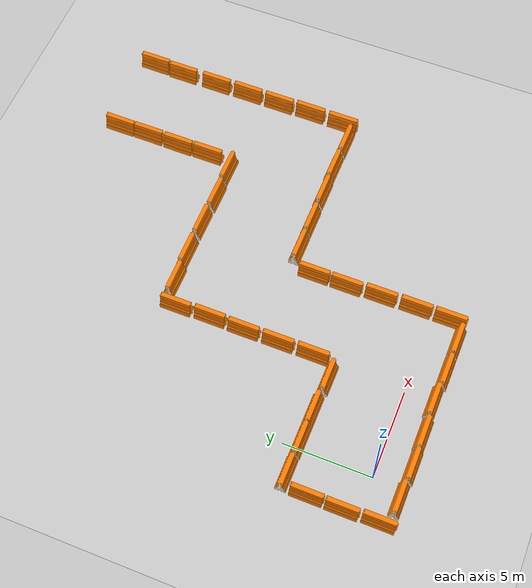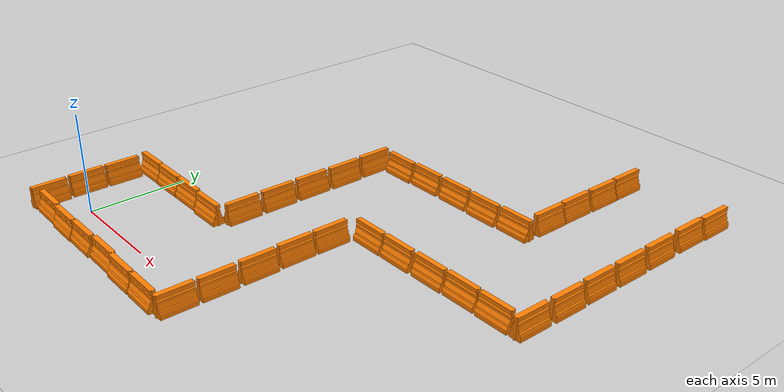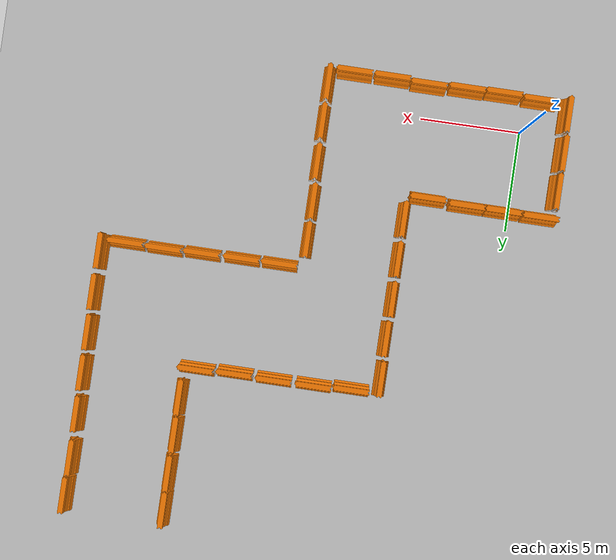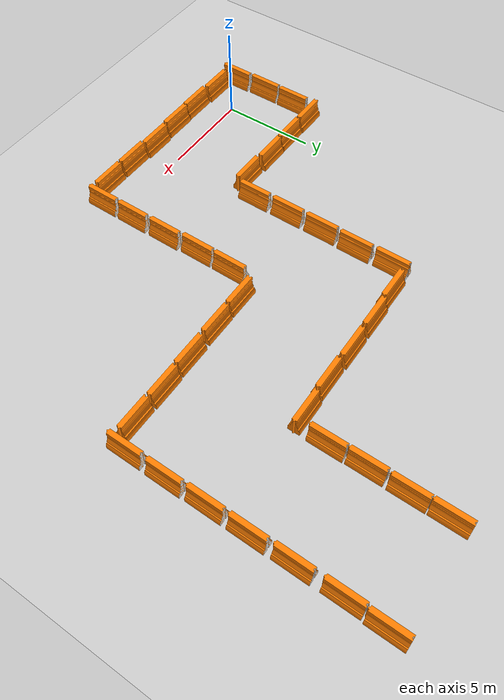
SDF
<sdf version="1.7">
 <world name="default">
  <light name="sun" type="directional">
   <pose>0 0 10 0 -0 0</pose>
   <diffuse>0.8 0.8 0.8 1</diffuse>
   <specular>0.2 0.2 0.2 1</specular>
   <attenuation>
    <range>1000</range>
    <constant>0.9</constant>
    <linear>0.01</linear>
    <quadratic>0.001</quadratic>
   </attenuation>
   <direction>-0.5 0.1 -0.9</direction>
   <spot><inner_angle>0</inner_angle><outer_angle>0</outer_angle><falloff>0</falloff></spot>
  </light>
  <model name="ground_plane">
   <static>1</static>
   <link name="link">
    <collision name="collision">
     <geometry><plane><normal>0 0 1</normal><size>100 100</size></plane></geometry>
     <surface><friction><ode><mu>100</mu><mu2>50</mu2></ode></friction></surface>
    </collision>
    <visual name="visual">
     <cast_shadows>0</cast_shadows>
     <geometry><plane><normal>0 0 1</normal><size>100 100</size></plane></geometry>
     <material>
      <script><uri>file://media/materials/scripts/gazebo.material</uri><name>Gazebo/Grey</name></script>
     </material>
    </visual>
    <velocity_decay><linear>0</linear><angular>0</angular></velocity_decay>
   </link>
  </model>
  <physics type="ode">
   <max_step_size>0.001</max_step_size>
   <real_time_factor>1</real_time_factor>
   <real_time_update_rate>1000</real_time_update_rate>
  </physics>
  <scene><ambient>0.4 0.4 0.4 1</ambient><background>0.7 0.7 0.7 1</background><shadows>1</shadows></scene>
  <spherical_coordinates>
   <surface_model>EARTH_WGS84</surface_model>
   <latitude_deg>0</latitude_deg>
   <longitude_deg>0</longitude_deg>
   <elevation>0</elevation>
   <heading_deg>0</heading_deg>
  </spherical_coordinates>
  <gravity>0 0 -9.8</gravity>
  <magnetic_field>6e-06 2.3e-05 -4.2e-05</magnetic_field>
  <atmosphere type="adiabatic"/>
  <model name="drc_practice_organge_jersey_barrier_0_clone_2_clone_clone_clone_1_clone_clone_1_clone_clone_28_clone_0_clone_clone_clone">
   <static>1</static>
   <link name="link">
    <visual name="visual">
     <geometry>
      <mesh><uri>model://drc_practice_orange_jersey_barrier/meshes/jersey_barrier.dae</uri></mesh>
     </geometry>
    </visual>
    <collision name="collision">
     <geometry>
      <mesh><uri>model://drc_practice_orange_jersey_barrier/meshes/jersey_barrier.dae</uri></mesh>
     </geometry>
    </collision>
   </link>
   <pose>2.18714 4.11153 0 0 -0 1.57</pose>
  </model>
  <model name="drc_practice_organge_jersey_barrier_0_clone_2_clone_clone_clone_1_clone_clone_1_clone_clone_28_clone_0_clone_clone_9_clone_clone_clone_clone_clone_clone">
   <static>1</static>
   <link name="link">
    <visual name="visual">
     <geometry>
      <mesh><uri>model://drc_practice_orange_jersey_barrier/meshes/jersey_barrier.dae</uri></mesh>
     </geometry>
    </visual>
    <collision name="collision">
     <geometry>
      <mesh><uri>model://drc_practice_orange_jersey_barrier/meshes/jersey_barrier.dae</uri></mesh>
     </geometry>
    </collision>
   </link>
   <pose>5.20004 5.23177 0 0 -0 0</pose>
  </model>
  <model name="drc_practice_organge_jersey_barrier_0_clone_2_clone_clone_clone_1_clone_clone_1_clone_clone_28_clone_0_clone_clone_9_clone_clone_clone_clone_clone_clone_0">
   <static>1</static>
   <link name="link">
    <visual name="visual">
     <geometry>
      <mesh><uri>model://drc_practice_orange_jersey_barrier/meshes/jersey_barrier.dae</uri></mesh>
     </geometry>
    </visual>
    <collision name="collision">
     <geometry>
      <mesh><uri>model://drc_practice_orange_jersey_barrier/meshes/jersey_barrier.dae</uri></mesh>
     </geometry>
    </collision>
   </link>
   <pose>5.19338 7.23505 0 0 -0 0</pose>
  </model>
  <model name="drc_practice_organge_jersey_barrier_0_clone_2_clone_clone_clone_1_clone_clone_1_clone_clone_28_clone_0_clone_clone_9_clone_clone_clone_clone_clone_clone_1">
   <static>1</static>
   <link name="link">
    <visual name="visual">
     <geometry>
      <mesh><uri>model://drc_practice_orange_jersey_barrier/meshes/jersey_barrier.dae</uri></mesh>
     </geometry>
    </visual>
    <collision name="collision">
     <geometry>
      <mesh><uri>model://drc_practice_orange_jersey_barrier/meshes/jersey_barrier.dae</uri></mesh>
     </geometry>
    </collision>
   </link>
   <pose>9.86001 0.991102 0 0 -0 0</pose>
  </model>
  <model name="drc_practice_organge_jersey_barrier_0_clone_2_clone_clone_clone_1_clone_clone_1_clone_clone_28_clone_0_clone_clone_9_clone_clone_clone_clone_clone_clone_2">
   <static>1</static>
   <link name="link">
    <visual name="visual">
     <geometry>
      <mesh><uri>model://drc_practice_orange_jersey_barrier/meshes/jersey_barrier.dae</uri></mesh>
     </geometry>
    </visual>
    <collision name="collision">
     <geometry>
      <mesh><uri>model://drc_practice_orange_jersey_barrier/meshes/jersey_barrier.dae</uri></mesh>
     </geometry>
    </collision>
   </link>
   <pose>9.83389 3.00349 0 0 -0 0</pose>
  </model>
  <model name="drc_practice_organge_jersey_barrier_0_clone_2_clone_clone_clone_1_clone_clone_1_clone_clone_28_clone_0_clone_clone_9_clone_clone_clone_clone_clone_clone_3">
   <static>1</static>
   <link name="link">
    <visual name="visual">
     <geometry>
      <mesh><uri>model://drc_practice_orange_jersey_barrier/meshes/jersey_barrier.dae</uri></mesh>
     </geometry>
    </visual>
    <collision name="collision">
     <geometry>
      <mesh><uri>model://drc_practice_orange_jersey_barrier/meshes/jersey_barrier.dae</uri></mesh>
     </geometry>
    </collision>
   </link>
   <pose>9.7693 4.98531 0 0 -0 0</pose>
  </model>
  <model name="drc_practice_organge_jersey_barrier_0_clone_2_clone_clone_clone_1_clone_clone_1_clone_clone_28_clone_0_clone_clone_9_clone_clone_clone_clone_clone_clone_4">
   <static>1</static>
   <link name="link">
    <visual name="visual">
     <geometry>
      <mesh><uri>model://drc_practice_orange_jersey_barrier/meshes/jersey_barrier.dae</uri></mesh>
     </geometry>
    </visual>
    <collision name="collision">
     <geometry>
      <mesh><uri>model://drc_practice_orange_jersey_barrier/meshes/jersey_barrier.dae</uri></mesh>
     </geometry>
    </collision>
   </link>
   <pose>9.77617 6.89145 0 0 -0 0</pose>
  </model>
  <model name="drc_practice_organge_jersey_barrier_0_clone_2_clone_clone_clone_1_clone_clone_1_clone_clone_28_clone_0_clone_clone_9_clone_clone_clone_clone_clone_clone_5">
   <static>1</static>
   <link name="link">
    <visual name="visual">
     <geometry>
      <mesh><uri>model://drc_practice_orange_jersey_barrier/meshes/jersey_barrier.dae</uri></mesh>
     </geometry>
    </visual>
    <collision name="collision">
     <geometry>
      <mesh><uri>model://drc_practice_orange_jersey_barrier/meshes/jersey_barrier.dae</uri></mesh>
     </geometry>
    </collision>
   </link>
   <pose>5.18951 9.2327 0 0 -0 0</pose>
  </model>
  <model name="drc_practice_organge_jersey_barrier_0_clone_2_clone_clone_clone_1_clone_clone_1_clone_clone_28_clone_0_clone_clone_9_clone_clone_clone_clone_clone_clone_6">
   <static>1</static>
   <link name="link">
    <visual name="visual">
     <geometry>
      <mesh><uri>model://drc_practice_orange_jersey_barrier/meshes/jersey_barrier.dae</uri></mesh>
     </geometry>
    </visual>
    <collision name="collision">
     <geometry>
      <mesh><uri>model://drc_practice_orange_jersey_barrier/meshes/jersey_barrier.dae</uri></mesh>
     </geometry>
    </collision>
   </link>
   <pose>5.22797 11.2137 0 0 -0 0</pose>
  </model>
  <model name="drc_practice_organge_jersey_barrier_0_clone_2_clone_clone_clone_1_clone_clone_1_clone_clone_28_clone_0_clone_clone_9_clone_clone_clone_clone_clone_clone_7">
   <static>1</static>
   <link name="link">
    <visual name="visual">
     <geometry>
      <mesh><uri>model://drc_practice_orange_jersey_barrier/meshes/jersey_barrier.dae</uri></mesh>
     </geometry>
    </visual>
    <collision name="collision">
     <geometry>
      <mesh><uri>model://drc_practice_orange_jersey_barrier/meshes/jersey_barrier.dae</uri></mesh>
     </geometry>
    </collision>
   </link>
   <pose>5.18786 13.2115 0 0 -0 0</pose>
  </model>
  <model name="drc_practice_organge_jersey_barrier_0_clone_2_clone_clone_clone_1_clone_clone_1_clone_clone_28_clone_0_clone_clone_clone_0">
   <static>1</static>
   <link name="link">
    <visual name="visual">
     <geometry>
      <mesh><uri>model://drc_practice_orange_jersey_barrier/meshes/jersey_barrier.dae</uri></mesh>
     </geometry>
    </visual>
    <collision name="collision">
     <geometry>
      <mesh><uri>model://drc_practice_orange_jersey_barrier/meshes/jersey_barrier.dae</uri></mesh>
     </geometry>
    </collision>
   </link>
   <pose>6.56564 13.924 0 0 -0 1.57</pose>
  </model>
  <model name="drc_practice_organge_jersey_barrier_0_clone_2_clone_clone_clone_1_clone_clone_1_clone_clone_28_clone_0_clone_clone_clone_1">
   <static>1</static>
   <link name="link">
    <visual name="visual">
     <geometry>
      <mesh><uri>model://drc_practice_orange_jersey_barrier/meshes/jersey_barrier.dae</uri></mesh>
     </geometry>
    </visual>
    <collision name="collision">
     <geometry>
      <mesh><uri>model://drc_practice_orange_jersey_barrier/meshes/jersey_barrier.dae</uri></mesh>
     </geometry>
    </collision>
   </link>
   <pose>8.44317 14 0 0 -0 1.57</pose>
  </model>
  <model name="drc_practice_organge_jersey_barrier_0_clone_2_clone_clone_clone_1_clone_clone_1_clone_clone_28_clone_0_clone_clone_clone_2">
   <static>1</static>
   <link name="link">
    <visual name="visual">
     <geometry>
      <mesh><uri>model://drc_practice_orange_jersey_barrier/meshes/jersey_barrier.dae</uri></mesh>
     </geometry>
    </visual>
    <collision name="collision">
     <geometry>
      <mesh><uri>model://drc_practice_orange_jersey_barrier/meshes/jersey_barrier.dae</uri></mesh>
     </geometry>
    </collision>
   </link>
   <pose>10.4361 14.0014 0 0 -0 1.57</pose>
  </model>
  <model name="drc_practice_organge_jersey_barrier_0_clone_2_clone_clone_clone_1_clone_clone_1_clone_clone_28_clone_0_clone_clone_clone_3">
   <static>1</static>
   <link name="link">
    <visual name="visual">
     <geometry>
      <mesh><uri>model://drc_practice_orange_jersey_barrier/meshes/jersey_barrier.dae</uri></mesh>
     </geometry>
    </visual>
    <collision name="collision">
     <geometry>
      <mesh><uri>model://drc_practice_orange_jersey_barrier/meshes/jersey_barrier.dae</uri></mesh>
     </geometry>
    </collision>
   </link>
   <pose>10.957 8.25445 0 0 -0 1.57</pose>
  </model>
  <model name="drc_practice_organge_jersey_barrier_0_clone_2_clone_clone_clone_1_clone_clone_1_clone_clone_28_clone_0_clone_clone_clone_4">
   <static>1</static>
   <link name="link">
    <visual name="visual">
     <geometry>
      <mesh><uri>model://drc_practice_orange_jersey_barrier/meshes/jersey_barrier.dae</uri></mesh>
     </geometry>
    </visual>
    <collision name="collision">
     <geometry>
      <mesh><uri>model://drc_practice_orange_jersey_barrier/meshes/jersey_barrier.dae</uri></mesh>
     </geometry>
    </collision>
   </link>
   <pose>12.8521 8.26148 0 0 -0 1.57</pose>
  </model>
  <model name="drc_practice_organge_jersey_barrier_0_clone_2_clone_clone_clone_1_clone_clone_1_clone_clone_28_clone_0_clone_clone_clone_5">
   <static>1</static>
   <link name="link">
    <visual name="visual">
     <geometry>
      <mesh><uri>model://drc_practice_orange_jersey_barrier/meshes/jersey_barrier.dae</uri></mesh>
     </geometry>
    </visual>
    <collision name="collision">
     <geometry>
      <mesh><uri>model://drc_practice_orange_jersey_barrier/meshes/jersey_barrier.dae</uri></mesh>
     </geometry>
    </collision>
   </link>
   <pose>14.8374 8.28236 0 0 -0 1.57</pose>
  </model>
  <model name="drc_practice_organge_jersey_barrier_0_clone_2_clone_clone_clone_1_clone_clone_1_clone_clone_28_clone_0_clone_clone_clone_6">
   <static>1</static>
   <link name="link">
    <visual name="visual">
     <geometry>
      <mesh><uri>model://drc_practice_orange_jersey_barrier/meshes/jersey_barrier.dae</uri></mesh>
     </geometry>
    </visual>
    <collision name="collision">
     <geometry>
      <mesh><uri>model://drc_practice_orange_jersey_barrier/meshes/jersey_barrier.dae</uri></mesh>
     </geometry>
    </collision>
   </link>
   <pose>16.7324 8.31395 0 0 -0 1.57</pose>
  </model>
  <model name="drc_practice_organge_jersey_barrier_0_clone_2_clone_clone_clone_1_clone_clone_1_clone_clone_28_clone_0_clone_clone_clone_7">
   <static>1</static>
   <link name="link">
    <visual name="visual">
     <geometry>
      <mesh><uri>model://drc_practice_orange_jersey_barrier/meshes/jersey_barrier.dae</uri></mesh>
     </geometry>
    </visual>
    <collision name="collision">
     <geometry>
      <mesh><uri>model://drc_practice_orange_jersey_barrier/meshes/jersey_barrier.dae</uri></mesh>
     </geometry>
    </collision>
   </link>
   <pose>12.3931 13.9558 0 0 -0 1.57</pose>
  </model>
  <model name="drc_practice_organge_jersey_barrier_0_clone_2_clone_clone_clone_1_clone_clone_1_clone_clone_28_clone_0_clone_clone_clone_8_clone">
   <static>1</static>
   <link name="link">
    <visual name="visual">
     <geometry>
      <mesh><uri>model://drc_practice_orange_jersey_barrier/meshes/jersey_barrier.dae</uri></mesh>
     </geometry>
    </visual>
    <collision name="collision">
     <geometry>
      <mesh><uri>model://drc_practice_orange_jersey_barrier/meshes/jersey_barrier.dae</uri></mesh>
     </geometry>
    </collision>
   </link>
   <pose>14.3197 14.0099 0 0 -0 1.57</pose>
  </model>
  <model name="drc_practice_organge_jersey_barrier_0_clone_2_clone_clone_clone_1_clone_clone_1_clone_clone_28_clone_0_clone_clone_clone_8_clone_0">
   <static>1</static>
   <link name="link">
    <visual name="visual">
     <geometry>
      <mesh><uri>model://drc_practice_orange_jersey_barrier/meshes/jersey_barrier.dae</uri></mesh>
     </geometry>
    </visual>
    <collision name="collision">
     <geometry>
      <mesh><uri>model://drc_practice_orange_jersey_barrier/meshes/jersey_barrier.dae</uri></mesh>
     </geometry>
    </collision>
   </link>
   <pose>18.6291 8.28063 0 0 -0 1.57</pose>
  </model>
  <model name="drc_practice_organge_jersey_barrier_0_clone_2_clone_clone_clone_1_clone_clone_1_clone_clone_28_clone_0_clone_clone_9_clone_clone_clone_clone_clone">
   <static>1</static>
   <link name="link">
    <visual name="visual">
     <geometry>
      <mesh><uri>model://drc_practice_orange_jersey_barrier/meshes/jersey_barrier.dae</uri></mesh>
     </geometry>
    </visual>
    <collision name="collision">
     <geometry>
      <mesh><uri>model://drc_practice_orange_jersey_barrier/meshes/jersey_barrier.dae</uri></mesh>
     </geometry>
    </collision>
   </link>
   <pose>14.9549 15.518 0 0 -0 0</pose>
  </model>
  <model name="drc_practice_organge_jersey_barrier_0_clone_2_clone_clone_clone_1_clone_clone_1_clone_clone_28_clone_0_clone_clone_9_clone_clone_clone_clone_clone_0">
   <static>1</static>
   <link name="link">
    <visual name="visual">
     <geometry>
      <mesh><uri>model://drc_practice_orange_jersey_barrier/meshes/jersey_barrier.dae</uri></mesh>
     </geometry>
    </visual>
    <collision name="collision">
     <geometry>
      <mesh><uri>model://drc_practice_orange_jersey_barrier/meshes/jersey_barrier.dae</uri></mesh>
     </geometry>
    </collision>
   </link>
   <pose>14.938 17.3827 0 0 -0 0</pose>
  </model>
  <model name="drc_practice_organge_jersey_barrier_0_clone_2_clone_clone_clone_1_clone_clone_1_clone_clone_28_clone_0_clone_clone_9_clone_clone_clone_clone_clone_1">
   <static>1</static>
   <link name="link">
    <visual name="visual">
     <geometry>
      <mesh><uri>model://drc_practice_orange_jersey_barrier/meshes/jersey_barrier.dae</uri></mesh>
     </geometry>
    </visual>
    <collision name="collision">
     <geometry>
      <mesh><uri>model://drc_practice_orange_jersey_barrier/meshes/jersey_barrier.dae</uri></mesh>
     </geometry>
    </collision>
   </link>
   <pose>14.9637 19.3089 0 0 -0 0</pose>
  </model>
  <model name="drc_practice_organge_jersey_barrier_0_clone_2_clone_clone_clone_1_clone_clone_1_clone_clone_28_clone_0_clone_clone_9_clone_clone_clone_clone_clone_2">
   <static>1</static>
   <link name="link">
    <visual name="visual">
     <geometry>
      <mesh><uri>model://drc_practice_orange_jersey_barrier/meshes/jersey_barrier.dae</uri></mesh>
     </geometry>
    </visual>
    <collision name="collision">
     <geometry>
      <mesh><uri>model://drc_practice_orange_jersey_barrier/meshes/jersey_barrier.dae</uri></mesh>
     </geometry>
    </collision>
   </link>
   <pose>19.9043 8.90395 0 0 -0 0</pose>
  </model>
  <model name="drc_practice_organge_jersey_barrier_0_clone_2_clone_clone_clone_1_clone_clone_1_clone_clone_28_clone_0_clone_clone_9_clone_clone_clone_clone_clone_3">
   <static>1</static>
   <link name="link">
    <visual name="visual">
     <geometry>
      <mesh><uri>model://drc_practice_orange_jersey_barrier/meshes/jersey_barrier.dae</uri></mesh>
     </geometry>
    </visual>
    <collision name="collision">
     <geometry>
      <mesh><uri>model://drc_practice_orange_jersey_barrier/meshes/jersey_barrier.dae</uri></mesh>
     </geometry>
    </collision>
   </link>
   <pose>19.9298 10.962 0 0 -0 0</pose>
  </model>
  <model name="drc_practice_organge_jersey_barrier_0_clone_2_clone_clone_clone_1_clone_clone_1_clone_clone_28_clone_0_clone_clone_9_clone_clone_clone_clone_clone_4">
   <static>1</static>
   <link name="link">
    <visual name="visual">
     <geometry>
      <mesh><uri>model://drc_practice_orange_jersey_barrier/meshes/jersey_barrier.dae</uri></mesh>
     </geometry>
    </visual>
    <collision name="collision">
     <geometry>
      <mesh><uri>model://drc_practice_orange_jersey_barrier/meshes/jersey_barrier.dae</uri></mesh>
     </geometry>
    </collision>
   </link>
   <pose>19.8991 12.9644 0 0 -0 0</pose>
  </model>
  <model name="drc_practice_organge_jersey_barrier_0_clone_2_clone_clone_clone_1_clone_clone_1_clone_clone_28_clone_0_clone_clone_9_clone_clone_clone_clone_clone_5">
   <static>1</static>
   <link name="link">
    <visual name="visual">
     <geometry>
      <mesh><uri>model://drc_practice_orange_jersey_barrier/meshes/jersey_barrier.dae</uri></mesh>
     </geometry>
    </visual>
    <collision name="collision">
     <geometry>
      <mesh><uri>model://drc_practice_orange_jersey_barrier/meshes/jersey_barrier.dae</uri></mesh>
     </geometry>
    </collision>
   </link>
   <pose>19.9031 14.9872 0 0 -0 0</pose>
  </model>
  <model name="drc_practice_organge_jersey_barrier_0_clone_2_clone_clone_clone_1_clone_clone_1_clone_clone_28_clone_0_clone_clone_9_clone_clone_clone_clone_clone_6">
   <static>1</static>
   <link name="link">
    <visual name="visual">
     <geometry>
      <mesh><uri>model://drc_practice_orange_jersey_barrier/meshes/jersey_barrier.dae</uri></mesh>
     </geometry>
    </visual>
    <collision name="collision">
     <geometry>
      <mesh><uri>model://drc_practice_orange_jersey_barrier/meshes/jersey_barrier.dae</uri></mesh>
     </geometry>
    </collision>
   </link>
   <pose>19.8817 17.0383 0 0 -0 0</pose>
  </model>
  <model name="drc_practice_organge_jersey_barrier_0_clone_2_clone_clone_clone_1_clone_clone_1_clone_clone_28_clone_0_clone_clone_9_clone_clone_clone_clone_clone_7">
   <static>1</static>
   <link name="link">
    <visual name="visual">
     <geometry>
      <mesh><uri>model://drc_practice_orange_jersey_barrier/meshes/jersey_barrier.dae</uri></mesh>
     </geometry>
    </visual>
    <collision name="collision">
     <geometry>
      <mesh><uri>model://drc_practice_orange_jersey_barrier/meshes/jersey_barrier.dae</uri></mesh>
     </geometry>
    </collision>
   </link>
   <pose>19.8646 19.2238 0 0 -0 0</pose>
  </model>
  <model name="drc_practice_organge_jersey_barrier_0_clone_2_clone_clone_clone_1_clone_clone_1_clone_clone_28_clone_0_clone_clone_clone_clone">
   <static>1</static>
   <link name="link">
    <visual name="visual">
     <geometry>
      <mesh><uri>model://drc_practice_orange_jersey_barrier/meshes/jersey_barrier.dae</uri></mesh>
     </geometry>
    </visual>
    <collision name="collision">
     <geometry>
      <mesh><uri>model://drc_practice_orange_jersey_barrier/meshes/jersey_barrier.dae</uri></mesh>
     </geometry>
    </collision>
   </link>
   <pose>0.361116 4.12253 0 0 -0 1.57</pose>
  </model>
  <model name="drc_practice_organge_jersey_barrier_0_clone_2_clone_clone_clone_1_clone_clone_1_clone_clone_28_clone_0_clone_clone_clone_clone_clone">
   <static>1</static>
   <link name="link">
    <visual name="visual">
     <geometry>
      <mesh><uri>model://drc_practice_orange_jersey_barrier/meshes/jersey_barrier.dae</uri></mesh>
     </geometry>
    </visual>
    <collision name="collision">
     <geometry>
      <mesh><uri>model://drc_practice_orange_jersey_barrier/meshes/jersey_barrier.dae</uri></mesh>
     </geometry>
    </collision>
   </link>
   <pose>-1.49284 4.15805 0 0 -0 1.57</pose>
  </model>
  <model name="drc_practice_organge_jersey_barrier_0_clone_2_clone_clone_clone_1_clone_clone_1_clone_clone_28_clone_0_clone_clone_9_clone_clone_clone_clone_clone_clone_1_clone">
   <static>1</static>
   <link name="link">
    <visual name="visual">
     <geometry>
      <mesh><uri>model://drc_practice_orange_jersey_barrier/meshes/jersey_barrier.dae</uri></mesh>
     </geometry>
    </visual>
    <collision name="collision">
     <geometry>
      <mesh><uri>model://drc_practice_orange_jersey_barrier/meshes/jersey_barrier.dae</uri></mesh>
     </geometry>
    </collision>
   </link>
   <pose>-2.14495 2.8064 0 0 -0 0</pose>
  </model>
  <model name="drc_practice_organge_jersey_barrier_0_clone_2_clone_clone_clone_1_clone_clone_1_clone_clone_28_clone_0_clone_clone_9_clone_clone_clone_clone_clone_clone_1_clone_0">
   <static>1</static>
   <link name="link">
    <visual name="visual">
     <geometry>
      <mesh><uri>model://drc_practice_orange_jersey_barrier/meshes/jersey_barrier.dae</uri></mesh>
     </geometry>
    </visual>
    <collision name="collision">
     <geometry>
      <mesh><uri>model://drc_practice_orange_jersey_barrier/meshes/jersey_barrier.dae</uri></mesh>
     </geometry>
    </collision>
   </link>
   <pose>-2.16893 0.901849 0 0 -0 0</pose>
  </model>
  <model name="drc_practice_organge_jersey_barrier_0_clone_2_clone_clone_clone_1_clone_clone_1_clone_clone_28_clone_0_clone_clone_9_clone_clone_clone_clone_clone_clone_1_clone_1">
   <static>1</static>
   <link name="link">
    <visual name="visual">
     <geometry>
      <mesh><uri>model://drc_practice_orange_jersey_barrier/meshes/jersey_barrier.dae</uri></mesh>
     </geometry>
    </visual>
    <collision name="collision">
     <geometry>
      <mesh><uri>model://drc_practice_orange_jersey_barrier/meshes/jersey_barrier.dae</uri></mesh>
     </geometry>
    </collision>
   </link>
   <pose>-2.11996 -1.03828 0 0 -0 0</pose>
  </model>
  <model name="drc_practice_organge_jersey_barrier_0_clone_2_clone_clone_clone_1_clone_clone_1_clone_clone_28_clone_0_clone_clone_clone_clone_clone_0">
   <static>1</static>
   <link name="link">
    <visual name="visual">
     <geometry>
      <mesh><uri>model://drc_practice_orange_jersey_barrier/meshes/jersey_barrier.dae</uri></mesh>
     </geometry>
    </visual>
    <collision name="collision">
     <geometry>
      <mesh><uri>model://drc_practice_orange_jersey_barrier/meshes/jersey_barrier.dae</uri></mesh>
     </geometry>
    </collision>
   </link>
   <pose>-0.73055 -1.60357 0 0 -0 1.57</pose>
  </model>
  <model name="drc_practice_organge_jersey_barrier_0_clone_2_clone_clone_clone_1_clone_clone_1_clone_clone_28_clone_0_clone_clone_clone_clone_clone_1">
   <static>1</static>
   <link name="link">
    <visual name="visual">
     <geometry>
      <mesh><uri>model://drc_practice_orange_jersey_barrier/meshes/jersey_barrier.dae</uri></mesh>
     </geometry>
    </visual>
    <collision name="collision">
     <geometry>
      <mesh><uri>model://drc_practice_orange_jersey_barrier/meshes/jersey_barrier.dae</uri></mesh>
     </geometry>
    </collision>
   </link>
   <pose>1.15516 -1.68792 0 0 -0 1.57</pose>
  </model>
  <model name="drc_practice_organge_jersey_barrier_0_clone_2_clone_clone_clone_1_clone_clone_1_clone_clone_28_clone_0_clone_clone_clone_clone_clone_2">
   <static>1</static>
   <link name="link">
    <visual name="visual">
     <geometry>
      <mesh><uri>model://drc_practice_orange_jersey_barrier/meshes/jersey_barrier.dae</uri></mesh>
     </geometry>
    </visual>
    <collision name="collision">
     <geometry>
      <mesh><uri>model://drc_practice_orange_jersey_barrier/meshes/jersey_barrier.dae</uri></mesh>
     </geometry>
    </collision>
   </link>
   <pose>2.98747 -1.66237 0 0 -0 1.57</pose>
  </model>
  <model name="drc_practice_organge_jersey_barrier_0_clone_2_clone_clone_clone_1_clone_clone_1_clone_clone_28_clone_0_clone_clone_clone_clone_clone_3">
   <static>1</static>
   <link name="link">
    <visual name="visual">
     <geometry>
      <mesh><uri>model://drc_practice_orange_jersey_barrier/meshes/jersey_barrier.dae</uri></mesh>
     </geometry>
    </visual>
    <collision name="collision">
     <geometry>
      <mesh><uri>model://drc_practice_orange_jersey_barrier/meshes/jersey_barrier.dae</uri></mesh>
     </geometry>
    </collision>
   </link>
   <pose>4.89321 -1.6019 0 0 -0 1.57</pose>
  </model>
  <model name="drc_practice_organge_jersey_barrier_0_clone_2_clone_clone_clone_1_clone_clone_1_clone_clone_28_clone_0_clone_clone_clone_clone_clone_4">
   <static>1</static>
   <link name="link">
    <visual name="visual">
     <geometry>
      <mesh><uri>model://drc_practice_orange_jersey_barrier/meshes/jersey_barrier.dae</uri></mesh>
     </geometry>
    </visual>
    <collision name="collision">
     <geometry>
      <mesh><uri>model://drc_practice_orange_jersey_barrier/meshes/jersey_barrier.dae</uri></mesh>
     </geometry>
    </collision>
   </link>
   <pose>6.72398 -1.70345 0 0 -0 1.57</pose>
  </model>
  <model name="drc_practice_organge_jersey_barrier_0_clone_2_clone_clone_clone_1_clone_clone_1_clone_clone_28_clone_0_clone_clone_clone_clone_clone_5">
   <static>1</static>
   <link name="link">
    <visual name="visual">
     <geometry>
      <mesh><uri>model://drc_practice_orange_jersey_barrier/meshes/jersey_barrier.dae</uri></mesh>
     </geometry>
    </visual>
    <collision name="collision">
     <geometry>
      <mesh><uri>model://drc_practice_orange_jersey_barrier/meshes/jersey_barrier.dae</uri></mesh>
     </geometry>
    </collision>
   </link>
   <pose>8.61072 -1.71526 0 0 -0 1.57</pose>
  </model>
  <model name="drc_practice_organge_jersey_barrier_0_clone_2_clone_clone_clone_1_clone_clone_1_clone_clone_28_clone_0_clone_clone_9_clone_clone_clone_clone_clone_clone_1_clone_2">
   <static>1</static>
   <link name="link">
    <visual name="visual">
     <geometry>
      <mesh><uri>model://drc_practice_orange_jersey_barrier/meshes/jersey_barrier.dae</uri></mesh>
     </geometry>
    </visual>
    <collision name="collision">
     <geometry>
      <mesh><uri>model://drc_practice_orange_jersey_barrier/meshes/jersey_barrier.dae</uri></mesh>
     </geometry>
    </collision>
   </link>
   <pose>9.85605 -0.956143 0 0 -0 0</pose>
  </model>
  <model name="drc_practice_organge_jersey_barrier_0_clone_2_clone_clone_clone_1_clone_clone_1_clone_clone_28_clone_0_clone_clone_9_clone_clone_clone_clone_clone_7_clone">
   <static>1</static>
   <link name="link">
    <visual name="visual">
     <geometry>
      <mesh><uri>model://drc_practice_orange_jersey_barrier/meshes/jersey_barrier.dae</uri></mesh>
     </geometry>
    </visual>
    <collision name="collision">
     <geometry>
      <mesh><uri>model://drc_practice_orange_jersey_barrier/meshes/jersey_barrier.dae</uri></mesh>
     </geometry>
    </collision>
   </link>
   <pose>19.9282 21.0935 0 0 -0 0</pose>
  </model>
  <model name="drc_practice_organge_jersey_barrier_0_clone_2_clone_clone_clone_1_clone_clone_1_clone_clone_28_clone_0_clone_clone_9_clone_clone_clone_clone_clone_7_clone_0">
   <static>1</static>
   <link name="link">
    <visual name="visual">
     <geometry>
      <mesh><uri>model://drc_practice_orange_jersey_barrier/meshes/jersey_barrier.dae</uri></mesh>
     </geometry>
    </visual>
    <collision name="collision">
     <geometry>
      <mesh><uri>model://drc_practice_orange_jersey_barrier/meshes/jersey_barrier.dae</uri></mesh>
     </geometry>
    </collision>
   </link>
   <pose>14.9594 21.1413 0 0 -0 0</pose>
  </model>
  <model name="drc_practice_organge_jersey_barrier_0_clone_2_clone_clone_clone_1_clone_clone_1_clone_clone_28_clone_0_clone_clone_clone_clone_0">
   <static>1</static>
   <link name="link">
    <visual name="visual">
     <geometry>
      <mesh><uri>model://drc_practice_orange_jersey_barrier/meshes/jersey_barrier.dae</uri></mesh>
     </geometry>
    </visual>
    <collision name="collision">
     <geometry>
      <mesh><uri>model://drc_practice_orange_jersey_barrier/meshes/jersey_barrier.dae</uri></mesh>
     </geometry>
    </collision>
   </link>
   <pose>4.13964 4.01199 0 0 -0 1.57</pose>
  </model>
 </world>
</sdf>
